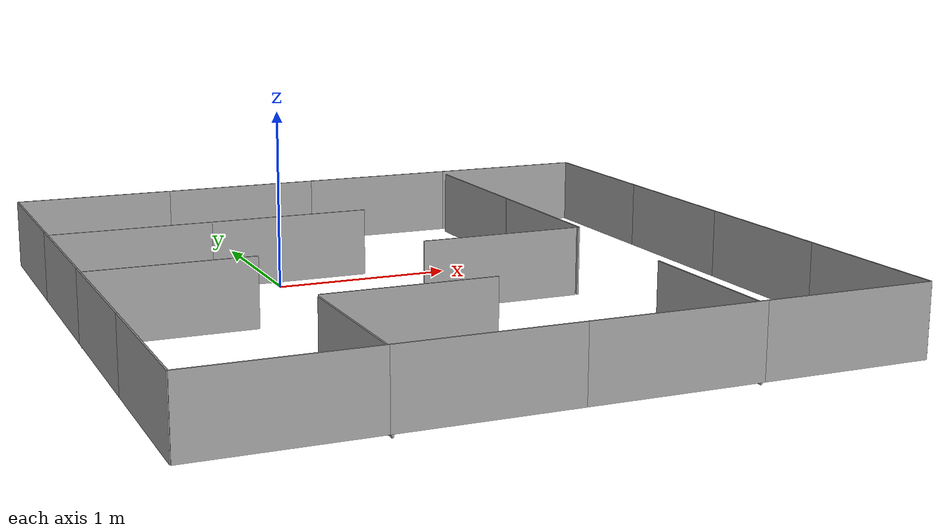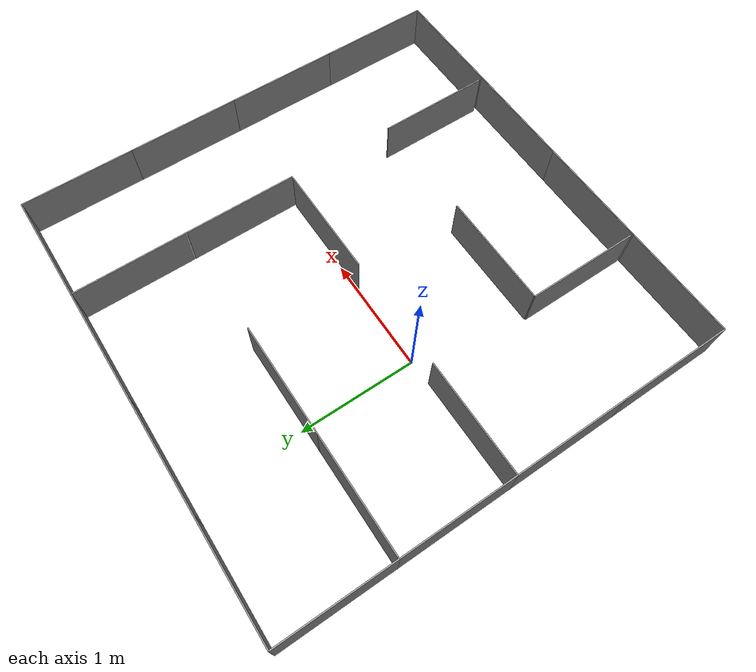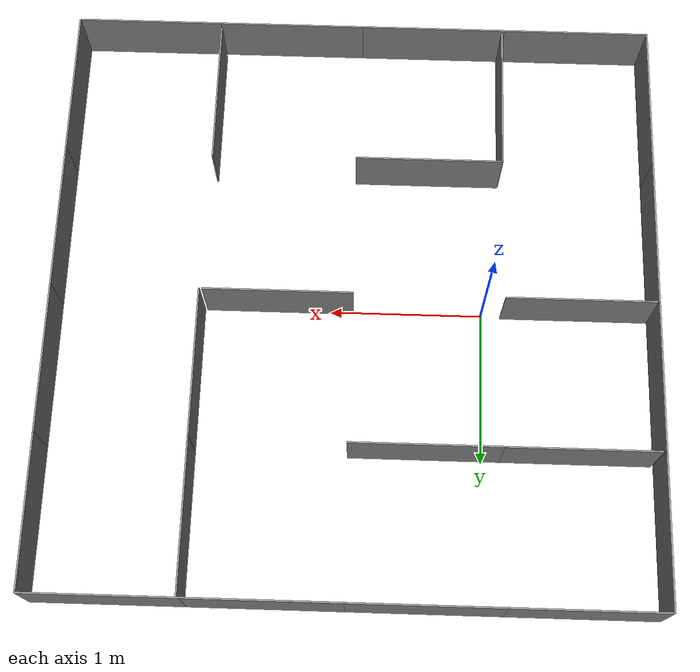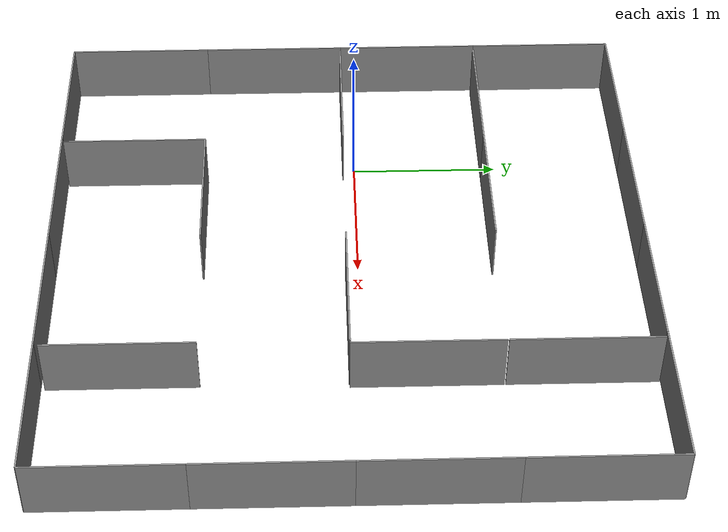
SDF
<sdf version="1.7">
 <model name="maze2">
  <model name="enclosure">
   <model name="wall_section_00">
    <link name="link">
     <inertial>
      <mass>0.2</mass>
      <inertia>
       <ixx>0.0333333</ixx>
       <ixy>0</ixy>
       <ixz>0</ixz>
       <iyy>0.0333333</iyy>
       <iyz>0</iyz>
       <izz>0.0333333</izz>
      </inertia>
     </inertial>
     <visual name="visual">
      <geometry><box><size>1 0.01 0.42</size></box></geometry>
      <material>
       <script><name>Gazebo/Grey</name><uri>file://media/materials/scripts/gazebo.material</uri></script>
       <shader type="pixel"><normal_map>__default__</normal_map></shader>
       <ambient>0.3 0.3 0.3 1</ambient>
       <diffuse>0.7 0.7 0.7 1</diffuse>
       <specular>0.01 0.01 0.01 1</specular>
       <emissive>1 1 1 1</emissive>
      </material>
     </visual>
     <collision name="collision_1">
      <geometry><box><size>1 0.01 0.42</size></box></geometry>
      <surface>
       <friction>
        <ode><mu>1</mu><mu2>1</mu2><fdir1>0 0 0</fdir1><slip1>0</slip1><slip2>0</slip2></ode>
        <torsional>
         <coefficient>1</coefficient>
         <patch_radius>0</patch_radius>
         <surface_radius>0</surface_radius>
         <use_patch_radius>1</use_patch_radius>
         <ode><slip>0</slip></ode>
        </torsional>
       </friction>
       <bounce><restitution_coefficient>0</restitution_coefficient><threshold>1e+06</threshold></bounce>
       <contact>
        <collide_without_contact>0</collide_without_contact>
        <collide_without_contact_bitmask>1</collide_without_contact_bitmask>
        <collide_bitmask>1</collide_bitmask>
        <ode>
         <soft_cfm>0</soft_cfm>
         <soft_erp>0.2</soft_erp>
         <kp>1e+13</kp>
         <kd>1</kd>
         <max_vel>0.01</max_vel>
         <min_depth>0</min_depth>
        </ode>
        <bullet>
         <split_impulse>1</split_impulse>
         <split_impulse_penetration_threshold>-0.01</split_impulse_penetration_threshold>
         <soft_cfm>0</soft_cfm>
         <soft_erp>0.2</soft_erp>
         <kp>1e+13</kp>
         <kd>1</kd>
        </bullet>
       </contact>
      </surface>
     </collision>
    </link>
    <static>0</static>
    <pose>-0.5 0 0 0 -0 0</pose>
   </model>
   <model name="wall_section_01">
    <link name="link">
     <inertial>
      <mass>0.2</mass>
      <inertia>
       <ixx>0.0333333</ixx>
       <ixy>0</ixy>
       <ixz>0</ixz>
       <iyy>0.0333333</iyy>
       <iyz>0</iyz>
       <izz>0.0333333</izz>
      </inertia>
     </inertial>
     <visual name="visual">
      <geometry><box><size>1 0.01 0.42</size></box></geometry>
      <material>
       <script><name>Gazebo/Grey</name><uri>file://media/materials/scripts/gazebo.material</uri></script>
       <shader type="pixel"><normal_map>__default__</normal_map></shader>
       <ambient>0.3 0.3 0.3 1</ambient>
       <diffuse>0.7 0.7 0.7 1</diffuse>
       <specular>0.01 0.01 0.01 1</specular>
       <emissive>1 1 1 1</emissive>
      </material>
     </visual>
     <collision name="collision_1">
      <geometry><box><size>1 0.01 0.42</size></box></geometry>
      <surface>
       <friction>
        <ode><mu>1</mu><mu2>1</mu2><fdir1>0 0 0</fdir1><slip1>0</slip1><slip2>0</slip2></ode>
        <torsional>
         <coefficient>1</coefficient>
         <patch_radius>0</patch_radius>
         <surface_radius>0</surface_radius>
         <use_patch_radius>1</use_patch_radius>
         <ode><slip>0</slip></ode>
        </torsional>
       </friction>
       <bounce><restitution_coefficient>0</restitution_coefficient><threshold>1e+06</threshold></bounce>
       <contact>
        <collide_without_contact>0</collide_without_contact>
        <collide_without_contact_bitmask>1</collide_without_contact_bitmask>
        <collide_bitmask>1</collide_bitmask>
        <ode>
         <soft_cfm>0</soft_cfm>
         <soft_erp>0.2</soft_erp>
         <kp>1e+13</kp>
         <kd>1</kd>
         <max_vel>0.01</max_vel>
         <min_depth>0</min_depth>
        </ode>
        <bullet>
         <split_impulse>1</split_impulse>
         <split_impulse_penetration_threshold>-0.01</split_impulse_penetration_threshold>
         <soft_cfm>0</soft_cfm>
         <soft_erp>0.2</soft_erp>
         <kp>1e+13</kp>
         <kd>1</kd>
        </bullet>
       </contact>
      </surface>
     </collision>
    </link>
    <static>0</static>
    <pose>0.5 0 0 0 -0 0</pose>
   </model>
   <model name="wall_section_02">
    <link name="link">
     <inertial>
      <mass>0.2</mass>
      <inertia>
       <ixx>0.0333333</ixx>
       <ixy>0</ixy>
       <ixz>0</ixz>
       <iyy>0.0333333</iyy>
       <iyz>0</iyz>
       <izz>0.0333333</izz>
      </inertia>
     </inertial>
     <visual name="visual">
      <geometry><box><size>1 0.01 0.42</size></box></geometry>
      <material>
       <script><name>Gazebo/Grey</name><uri>file://media/materials/scripts/gazebo.material</uri></script>
       <shader type="pixel"><normal_map>__default__</normal_map></shader>
       <ambient>0.3 0.3 0.3 1</ambient>
       <diffuse>0.7 0.7 0.7 1</diffuse>
       <specular>0.01 0.01 0.01 1</specular>
       <emissive>1 1 1 1</emissive>
      </material>
     </visual>
     <collision name="collision_1">
      <geometry><box><size>1 0.01 0.42</size></box></geometry>
      <surface>
       <friction>
        <ode><mu>1</mu><mu2>1</mu2><fdir1>0 0 0</fdir1><slip1>0</slip1><slip2>0</slip2></ode>
        <torsional>
         <coefficient>1</coefficient>
         <patch_radius>0</patch_radius>
         <surface_radius>0</surface_radius>
         <use_patch_radius>1</use_patch_radius>
         <ode><slip>0</slip></ode>
        </torsional>
       </friction>
       <bounce><restitution_coefficient>0</restitution_coefficient><threshold>1e+06</threshold></bounce>
       <contact>
        <collide_without_contact>0</collide_without_contact>
        <collide_without_contact_bitmask>1</collide_without_contact_bitmask>
        <collide_bitmask>1</collide_bitmask>
        <ode>
         <soft_cfm>0</soft_cfm>
         <soft_erp>0.2</soft_erp>
         <kp>1e+13</kp>
         <kd>1</kd>
         <max_vel>0.01</max_vel>
         <min_depth>0</min_depth>
        </ode>
        <bullet>
         <split_impulse>1</split_impulse>
         <split_impulse_penetration_threshold>-0.01</split_impulse_penetration_threshold>
         <soft_cfm>0</soft_cfm>
         <soft_erp>0.2</soft_erp>
         <kp>1e+13</kp>
         <kd>1</kd>
        </bullet>
       </contact>
      </surface>
     </collision>
    </link>
    <static>0</static>
    <pose>1.5 0 0 0 -0 0</pose>
   </model>
   <model name="wall_section_03">
    <link name="link">
     <inertial>
      <mass>0.2</mass>
      <inertia>
       <ixx>0.0333333</ixx>
       <ixy>0</ixy>
       <ixz>0</ixz>
       <iyy>0.0333333</iyy>
       <iyz>0</iyz>
       <izz>0.0333333</izz>
      </inertia>
     </inertial>
     <visual name="visual">
      <geometry><box><size>1 0.01 0.42</size></box></geometry>
      <material>
       <script><name>Gazebo/Grey</name><uri>file://media/materials/scripts/gazebo.material</uri></script>
       <shader type="pixel"><normal_map>__default__</normal_map></shader>
       <ambient>0.3 0.3 0.3 1</ambient>
       <diffuse>0.7 0.7 0.7 1</diffuse>
       <specular>0.01 0.01 0.01 1</specular>
       <emissive>1 1 1 1</emissive>
      </material>
     </visual>
     <collision name="collision_1">
      <geometry><box><size>1 0.01 0.42</size></box></geometry>
      <surface>
       <friction>
        <ode><mu>1</mu><mu2>1</mu2><fdir1>0 0 0</fdir1><slip1>0</slip1><slip2>0</slip2></ode>
        <torsional>
         <coefficient>1</coefficient>
         <patch_radius>0</patch_radius>
         <surface_radius>0</surface_radius>
         <use_patch_radius>1</use_patch_radius>
         <ode><slip>0</slip></ode>
        </torsional>
       </friction>
       <bounce><restitution_coefficient>0</restitution_coefficient><threshold>1e+06</threshold></bounce>
       <contact>
        <collide_without_contact>0</collide_without_contact>
        <collide_without_contact_bitmask>1</collide_without_contact_bitmask>
        <collide_bitmask>1</collide_bitmask>
        <ode>
         <soft_cfm>0</soft_cfm>
         <soft_erp>0.2</soft_erp>
         <kp>1e+13</kp>
         <kd>1</kd>
         <max_vel>0.01</max_vel>
         <min_depth>0</min_depth>
        </ode>
        <bullet>
         <split_impulse>1</split_impulse>
         <split_impulse_penetration_threshold>-0.01</split_impulse_penetration_threshold>
         <soft_cfm>0</soft_cfm>
         <soft_erp>0.2</soft_erp>
         <kp>1e+13</kp>
         <kd>1</kd>
        </bullet>
       </contact>
      </surface>
     </collision>
    </link>
    <static>0</static>
    <pose>2.5 0 0 0 -0 0</pose>
   </model>
   <model name="wall_section_04">
    <link name="link">
     <inertial>
      <mass>0.2</mass>
      <inertia>
       <ixx>0.0333333</ixx>
       <ixy>0</ixy>
       <ixz>0</ixz>
       <iyy>0.0333333</iyy>
       <iyz>0</iyz>
       <izz>0.0333333</izz>
      </inertia>
     </inertial>
     <visual name="visual">
      <geometry><box><size>1 0.01 0.42</size></box></geometry>
      <material>
       <script><name>Gazebo/Grey</name><uri>file://media/materials/scripts/gazebo.material</uri></script>
       <shader type="pixel"><normal_map>__default__</normal_map></shader>
       <ambient>0.3 0.3 0.3 1</ambient>
       <diffuse>0.7 0.7 0.7 1</diffuse>
       <specular>0.01 0.01 0.01 1</specular>
       <emissive>1 1 1 1</emissive>
      </material>
     </visual>
     <collision name="collision_1">
      <geometry><box><size>1 0.01 0.42</size></box></geometry>
      <surface>
       <friction>
        <ode><mu>1</mu><mu2>1</mu2><fdir1>0 0 0</fdir1><slip1>0</slip1><slip2>0</slip2></ode>
        <torsional>
         <coefficient>1</coefficient>
         <patch_radius>0</patch_radius>
         <surface_radius>0</surface_radius>
         <use_patch_radius>1</use_patch_radius>
         <ode><slip>0</slip></ode>
        </torsional>
       </friction>
       <bounce><restitution_coefficient>0</restitution_coefficient><threshold>1e+06</threshold></bounce>
       <contact>
        <collide_without_contact>0</collide_without_contact>
        <collide_without_contact_bitmask>1</collide_without_contact_bitmask>
        <collide_bitmask>1</collide_bitmask>
        <ode>
         <soft_cfm>0</soft_cfm>
         <soft_erp>0.2</soft_erp>
         <kp>1e+13</kp>
         <kd>1</kd>
         <max_vel>0.01</max_vel>
         <min_depth>0</min_depth>
        </ode>
        <bullet>
         <split_impulse>1</split_impulse>
         <split_impulse_penetration_threshold>-0.01</split_impulse_penetration_threshold>
         <soft_cfm>0</soft_cfm>
         <soft_erp>0.2</soft_erp>
         <kp>1e+13</kp>
         <kd>1</kd>
        </bullet>
       </contact>
      </surface>
     </collision>
    </link>
    <static>0</static>
    <pose>3 0.5 0 0 -0 1.5708</pose>
   </model>
   <model name="wall_section_05">
    <link name="link">
     <inertial>
      <mass>0.2</mass>
      <inertia>
       <ixx>0.0333333</ixx>
       <ixy>0</ixy>
       <ixz>0</ixz>
       <iyy>0.0333333</iyy>
       <iyz>0</iyz>
       <izz>0.0333333</izz>
      </inertia>
     </inertial>
     <visual name="visual">
      <geometry><box><size>1 0.01 0.42</size></box></geometry>
      <material>
       <script><name>Gazebo/Grey</name><uri>file://media/materials/scripts/gazebo.material</uri></script>
       <shader type="pixel"><normal_map>__default__</normal_map></shader>
       <ambient>0.3 0.3 0.3 1</ambient>
       <diffuse>0.7 0.7 0.7 1</diffuse>
       <specular>0.01 0.01 0.01 1</specular>
       <emissive>1 1 1 1</emissive>
      </material>
     </visual>
     <collision name="collision_1">
      <geometry><box><size>1 0.01 0.42</size></box></geometry>
      <surface>
       <friction>
        <ode><mu>1</mu><mu2>1</mu2><fdir1>0 0 0</fdir1><slip1>0</slip1><slip2>0</slip2></ode>
        <torsional>
         <coefficient>1</coefficient>
         <patch_radius>0</patch_radius>
         <surface_radius>0</surface_radius>
         <use_patch_radius>1</use_patch_radius>
         <ode><slip>0</slip></ode>
        </torsional>
       </friction>
       <bounce><restitution_coefficient>0</restitution_coefficient><threshold>1e+06</threshold></bounce>
       <contact>
        <collide_without_contact>0</collide_without_contact>
        <collide_without_contact_bitmask>1</collide_without_contact_bitmask>
        <collide_bitmask>1</collide_bitmask>
        <ode>
         <soft_cfm>0</soft_cfm>
         <soft_erp>0.2</soft_erp>
         <kp>1e+13</kp>
         <kd>1</kd>
         <max_vel>0.01</max_vel>
         <min_depth>0</min_depth>
        </ode>
        <bullet>
         <split_impulse>1</split_impulse>
         <split_impulse_penetration_threshold>-0.01</split_impulse_penetration_threshold>
         <soft_cfm>0</soft_cfm>
         <soft_erp>0.2</soft_erp>
         <kp>1e+13</kp>
         <kd>1</kd>
        </bullet>
       </contact>
      </surface>
     </collision>
    </link>
    <static>0</static>
    <pose>3 1.5 0 0 -0 1.5708</pose>
   </model>
   <model name="wall_section_06">
    <link name="link">
     <inertial>
      <mass>0.2</mass>
      <inertia>
       <ixx>0.0333333</ixx>
       <ixy>0</ixy>
       <ixz>0</ixz>
       <iyy>0.0333333</iyy>
       <iyz>0</iyz>
       <izz>0.0333333</izz>
      </inertia>
     </inertial>
     <visual name="visual">
      <geometry><box><size>1 0.01 0.42</size></box></geometry>
      <material>
       <script><name>Gazebo/Grey</name><uri>file://media/materials/scripts/gazebo.material</uri></script>
       <shader type="pixel"><normal_map>__default__</normal_map></shader>
       <ambient>0.3 0.3 0.3 1</ambient>
       <diffuse>0.7 0.7 0.7 1</diffuse>
       <specular>0.01 0.01 0.01 1</specular>
       <emissive>1 1 1 1</emissive>
      </material>
     </visual>
     <collision name="collision_1">
      <geometry><box><size>1 0.01 0.42</size></box></geometry>
      <surface>
       <friction>
        <ode><mu>1</mu><mu2>1</mu2><fdir1>0 0 0</fdir1><slip1>0</slip1><slip2>0</slip2></ode>
        <torsional>
         <coefficient>1</coefficient>
         <patch_radius>0</patch_radius>
         <surface_radius>0</surface_radius>
         <use_patch_radius>1</use_patch_radius>
         <ode><slip>0</slip></ode>
        </torsional>
       </friction>
       <bounce><restitution_coefficient>0</restitution_coefficient><threshold>1e+06</threshold></bounce>
       <contact>
        <collide_without_contact>0</collide_without_contact>
        <collide_without_contact_bitmask>1</collide_without_contact_bitmask>
        <collide_bitmask>1</collide_bitmask>
        <ode>
         <soft_cfm>0</soft_cfm>
         <soft_erp>0.2</soft_erp>
         <kp>1e+13</kp>
         <kd>1</kd>
         <max_vel>0.01</max_vel>
         <min_depth>0</min_depth>
        </ode>
        <bullet>
         <split_impulse>1</split_impulse>
         <split_impulse_penetration_threshold>-0.01</split_impulse_penetration_threshold>
         <soft_cfm>0</soft_cfm>
         <soft_erp>0.2</soft_erp>
         <kp>1e+13</kp>
         <kd>1</kd>
        </bullet>
       </contact>
      </surface>
     </collision>
    </link>
    <static>0</static>
    <pose>3 2.5 0 0 -0 1.5708</pose>
   </model>
   <model name="wall_section_07">
    <link name="link">
     <inertial>
      <mass>0.2</mass>
      <inertia>
       <ixx>0.0333333</ixx>
       <ixy>0</ixy>
       <ixz>0</ixz>
       <iyy>0.0333333</iyy>
       <iyz>0</iyz>
       <izz>0.0333333</izz>
      </inertia>
     </inertial>
     <visual name="visual">
      <geometry><box><size>1 0.01 0.42</size></box></geometry>
      <material>
       <script><name>Gazebo/Grey</name><uri>file://media/materials/scripts/gazebo.material</uri></script>
       <shader type="pixel"><normal_map>__default__</normal_map></shader>
       <ambient>0.3 0.3 0.3 1</ambient>
       <diffuse>0.7 0.7 0.7 1</diffuse>
       <specular>0.01 0.01 0.01 1</specular>
       <emissive>1 1 1 1</emissive>
      </material>
     </visual>
     <collision name="collision_1">
      <geometry><box><size>1 0.01 0.42</size></box></geometry>
      <surface>
       <friction>
        <ode><mu>1</mu><mu2>1</mu2><fdir1>0 0 0</fdir1><slip1>0</slip1><slip2>0</slip2></ode>
        <torsional>
         <coefficient>1</coefficient>
         <patch_radius>0</patch_radius>
         <surface_radius>0</surface_radius>
         <use_patch_radius>1</use_patch_radius>
         <ode><slip>0</slip></ode>
        </torsional>
       </friction>
       <bounce><restitution_coefficient>0</restitution_coefficient><threshold>1e+06</threshold></bounce>
       <contact>
        <collide_without_contact>0</collide_without_contact>
        <collide_without_contact_bitmask>1</collide_without_contact_bitmask>
        <collide_bitmask>1</collide_bitmask>
        <ode>
         <soft_cfm>0</soft_cfm>
         <soft_erp>0.2</soft_erp>
         <kp>1e+13</kp>
         <kd>1</kd>
         <max_vel>0.01</max_vel>
         <min_depth>0</min_depth>
        </ode>
        <bullet>
         <split_impulse>1</split_impulse>
         <split_impulse_penetration_threshold>-0.01</split_impulse_penetration_threshold>
         <soft_cfm>0</soft_cfm>
         <soft_erp>0.2</soft_erp>
         <kp>1e+13</kp>
         <kd>1</kd>
        </bullet>
       </contact>
      </surface>
     </collision>
    </link>
    <static>0</static>
    <pose>3 3.5 0 0 -0 1.5708</pose>
   </model>
   <model name="wall_section_08">
    <link name="link">
     <inertial>
      <mass>0.2</mass>
      <inertia>
       <ixx>0.0333333</ixx>
       <ixy>0</ixy>
       <ixz>0</ixz>
       <iyy>0.0333333</iyy>
       <iyz>0</iyz>
       <izz>0.0333333</izz>
      </inertia>
     </inertial>
     <visual name="visual">
      <geometry><box><size>1 0.01 0.42</size></box></geometry>
      <material>
       <script><name>Gazebo/Grey</name><uri>file://media/materials/scripts/gazebo.material</uri></script>
       <shader type="pixel"><normal_map>__default__</normal_map></shader>
       <ambient>0.3 0.3 0.3 1</ambient>
       <diffuse>0.7 0.7 0.7 1</diffuse>
       <specular>0.01 0.01 0.01 1</specular>
       <emissive>1 1 1 1</emissive>
      </material>
     </visual>
     <collision name="collision_1">
      <geometry><box><size>1 0.01 0.42</size></box></geometry>
      <surface>
       <friction>
        <ode><mu>1</mu><mu2>1</mu2><fdir1>0 0 0</fdir1><slip1>0</slip1><slip2>0</slip2></ode>
        <torsional>
         <coefficient>1</coefficient>
         <patch_radius>0</patch_radius>
         <surface_radius>0</surface_radius>
         <use_patch_radius>1</use_patch_radius>
         <ode><slip>0</slip></ode>
        </torsional>
       </friction>
       <bounce><restitution_coefficient>0</restitution_coefficient><threshold>1e+06</threshold></bounce>
       <contact>
        <collide_without_contact>0</collide_without_contact>
        <collide_without_contact_bitmask>1</collide_without_contact_bitmask>
        <collide_bitmask>1</collide_bitmask>
        <ode>
         <soft_cfm>0</soft_cfm>
         <soft_erp>0.2</soft_erp>
         <kp>1e+13</kp>
         <kd>1</kd>
         <max_vel>0.01</max_vel>
         <min_depth>0</min_depth>
        </ode>
        <bullet>
         <split_impulse>1</split_impulse>
         <split_impulse_penetration_threshold>-0.01</split_impulse_penetration_threshold>
         <soft_cfm>0</soft_cfm>
         <soft_erp>0.2</soft_erp>
         <kp>1e+13</kp>
         <kd>1</kd>
        </bullet>
       </contact>
      </surface>
     </collision>
    </link>
    <static>0</static>
    <pose>2.5 4 0 0 -0 3.14159</pose>
   </model>
   <model name="wall_section_09">
    <link name="link">
     <inertial>
      <mass>0.2</mass>
      <inertia>
       <ixx>0.0333333</ixx>
       <ixy>0</ixy>
       <ixz>0</ixz>
       <iyy>0.0333333</iyy>
       <iyz>0</iyz>
       <izz>0.0333333</izz>
      </inertia>
     </inertial>
     <visual name="visual">
      <geometry><box><size>1 0.01 0.42</size></box></geometry>
      <material>
       <script><name>Gazebo/Grey</name><uri>file://media/materials/scripts/gazebo.material</uri></script>
       <shader type="pixel"><normal_map>__default__</normal_map></shader>
       <ambient>0.3 0.3 0.3 1</ambient>
       <diffuse>0.7 0.7 0.7 1</diffuse>
       <specular>0.01 0.01 0.01 1</specular>
       <emissive>1 1 1 1</emissive>
      </material>
     </visual>
     <collision name="collision_1">
      <geometry><box><size>1 0.01 0.42</size></box></geometry>
      <surface>
       <friction>
        <ode><mu>1</mu><mu2>1</mu2><fdir1>0 0 0</fdir1><slip1>0</slip1><slip2>0</slip2></ode>
        <torsional>
         <coefficient>1</coefficient>
         <patch_radius>0</patch_radius>
         <surface_radius>0</surface_radius>
         <use_patch_radius>1</use_patch_radius>
         <ode><slip>0</slip></ode>
        </torsional>
       </friction>
       <bounce><restitution_coefficient>0</restitution_coefficient><threshold>1e+06</threshold></bounce>
       <contact>
        <collide_without_contact>0</collide_without_contact>
        <collide_without_contact_bitmask>1</collide_without_contact_bitmask>
        <collide_bitmask>1</collide_bitmask>
        <ode>
         <soft_cfm>0</soft_cfm>
         <soft_erp>0.2</soft_erp>
         <kp>1e+13</kp>
         <kd>1</kd>
         <max_vel>0.01</max_vel>
         <min_depth>0</min_depth>
        </ode>
        <bullet>
         <split_impulse>1</split_impulse>
         <split_impulse_penetration_threshold>-0.01</split_impulse_penetration_threshold>
         <soft_cfm>0</soft_cfm>
         <soft_erp>0.2</soft_erp>
         <kp>1e+13</kp>
         <kd>1</kd>
        </bullet>
       </contact>
      </surface>
     </collision>
    </link>
    <static>0</static>
    <pose>1.5 4 0 0 -0 3.14159</pose>
   </model>
   <model name="wall_section_10">
    <link name="link">
     <inertial>
      <mass>0.2</mass>
      <inertia>
       <ixx>0.0333333</ixx>
       <ixy>0</ixy>
       <ixz>0</ixz>
       <iyy>0.0333333</iyy>
       <iyz>0</iyz>
       <izz>0.0333333</izz>
      </inertia>
     </inertial>
     <visual name="visual">
      <geometry><box><size>1 0.01 0.42</size></box></geometry>
      <material>
       <script><name>Gazebo/Grey</name><uri>file://media/materials/scripts/gazebo.material</uri></script>
       <shader type="pixel"><normal_map>__default__</normal_map></shader>
       <ambient>0.3 0.3 0.3 1</ambient>
       <diffuse>0.7 0.7 0.7 1</diffuse>
       <specular>0.01 0.01 0.01 1</specular>
       <emissive>1 1 1 1</emissive>
      </material>
     </visual>
     <collision name="collision_1">
      <geometry><box><size>1 0.01 0.42</size></box></geometry>
      <surface>
       <friction>
        <ode><mu>1</mu><mu2>1</mu2><fdir1>0 0 0</fdir1><slip1>0</slip1><slip2>0</slip2></ode>
        <torsional>
         <coefficient>1</coefficient>
         <patch_radius>0</patch_radius>
         <surface_radius>0</surface_radius>
         <use_patch_radius>1</use_patch_radius>
         <ode><slip>0</slip></ode>
        </torsional>
       </friction>
       <bounce><restitution_coefficient>0</restitution_coefficient><threshold>1e+06</threshold></bounce>
       <contact>
        <collide_without_contact>0</collide_without_contact>
        <collide_without_contact_bitmask>1</collide_without_contact_bitmask>
        <collide_bitmask>1</collide_bitmask>
        <ode>
         <soft_cfm>0</soft_cfm>
         <soft_erp>0.2</soft_erp>
         <kp>1e+13</kp>
         <kd>1</kd>
         <max_vel>0.01</max_vel>
         <min_depth>0</min_depth>
        </ode>
        <bullet>
         <split_impulse>1</split_impulse>
         <split_impulse_penetration_threshold>-0.01</split_impulse_penetration_threshold>
         <soft_cfm>0</soft_cfm>
         <soft_erp>0.2</soft_erp>
         <kp>1e+13</kp>
         <kd>1</kd>
        </bullet>
       </contact>
      </surface>
     </collision>
    </link>
    <static>0</static>
    <pose>0.5 4 0 0 -0 3.14159</pose>
   </model>
   <model name="wall_section_11">
    <link name="link">
     <inertial>
      <mass>0.2</mass>
      <inertia>
       <ixx>0.0333333</ixx>
       <ixy>0</ixy>
       <ixz>0</ixz>
       <iyy>0.0333333</iyy>
       <iyz>0</iyz>
       <izz>0.0333333</izz>
      </inertia>
     </inertial>
     <visual name="visual">
      <geometry><box><size>1 0.01 0.42</size></box></geometry>
      <material>
       <script><name>Gazebo/Grey</name><uri>file://media/materials/scripts/gazebo.material</uri></script>
       <shader type="pixel"><normal_map>__default__</normal_map></shader>
       <ambient>0.3 0.3 0.3 1</ambient>
       <diffuse>0.7 0.7 0.7 1</diffuse>
       <specular>0.01 0.01 0.01 1</specular>
       <emissive>1 1 1 1</emissive>
      </material>
     </visual>
     <collision name="collision_1">
      <geometry><box><size>1 0.01 0.42</size></box></geometry>
      <surface>
       <friction>
        <ode><mu>1</mu><mu2>1</mu2><fdir1>0 0 0</fdir1><slip1>0</slip1><slip2>0</slip2></ode>
        <torsional>
         <coefficient>1</coefficient>
         <patch_radius>0</patch_radius>
         <surface_radius>0</surface_radius>
         <use_patch_radius>1</use_patch_radius>
         <ode><slip>0</slip></ode>
        </torsional>
       </friction>
       <bounce><restitution_coefficient>0</restitution_coefficient><threshold>1e+06</threshold></bounce>
       <contact>
        <collide_without_contact>0</collide_without_contact>
        <collide_without_contact_bitmask>1</collide_without_contact_bitmask>
        <collide_bitmask>1</collide_bitmask>
        <ode>
         <soft_cfm>0</soft_cfm>
         <soft_erp>0.2</soft_erp>
         <kp>1e+13</kp>
         <kd>1</kd>
         <max_vel>0.01</max_vel>
         <min_depth>0</min_depth>
        </ode>
        <bullet>
         <split_impulse>1</split_impulse>
         <split_impulse_penetration_threshold>-0.01</split_impulse_penetration_threshold>
         <soft_cfm>0</soft_cfm>
         <soft_erp>0.2</soft_erp>
         <kp>1e+13</kp>
         <kd>1</kd>
        </bullet>
       </contact>
      </surface>
     </collision>
    </link>
    <static>0</static>
    <pose>-0.5 4 0 0 -0 3.14159</pose>
   </model>
   <model name="wall_section_12">
    <link name="link">
     <inertial>
      <mass>0.2</mass>
      <inertia>
       <ixx>0.0333333</ixx>
       <ixy>0</ixy>
       <ixz>0</ixz>
       <iyy>0.0333333</iyy>
       <iyz>0</iyz>
       <izz>0.0333333</izz>
      </inertia>
     </inertial>
     <visual name="visual">
      <geometry><box><size>1 0.01 0.42</size></box></geometry>
      <material>
       <script><name>Gazebo/Grey</name><uri>file://media/materials/scripts/gazebo.material</uri></script>
       <shader type="pixel"><normal_map>__default__</normal_map></shader>
       <ambient>0.3 0.3 0.3 1</ambient>
       <diffuse>0.7 0.7 0.7 1</diffuse>
       <specular>0.01 0.01 0.01 1</specular>
       <emissive>1 1 1 1</emissive>
      </material>
     </visual>
     <collision name="collision_1">
      <geometry><box><size>1 0.01 0.42</size></box></geometry>
      <surface>
       <friction>
        <ode><mu>1</mu><mu2>1</mu2><fdir1>0 0 0</fdir1><slip1>0</slip1><slip2>0</slip2></ode>
        <torsional>
         <coefficient>1</coefficient>
         <patch_radius>0</patch_radius>
         <surface_radius>0</surface_radius>
         <use_patch_radius>1</use_patch_radius>
         <ode><slip>0</slip></ode>
        </torsional>
       </friction>
       <bounce><restitution_coefficient>0</restitution_coefficient><threshold>1e+06</threshold></bounce>
       <contact>
        <collide_without_contact>0</collide_without_contact>
        <collide_without_contact_bitmask>1</collide_without_contact_bitmask>
        <collide_bitmask>1</collide_bitmask>
        <ode>
         <soft_cfm>0</soft_cfm>
         <soft_erp>0.2</soft_erp>
         <kp>1e+13</kp>
         <kd>1</kd>
         <max_vel>0.01</max_vel>
         <min_depth>0</min_depth>
        </ode>
        <bullet>
         <split_impulse>1</split_impulse>
         <split_impulse_penetration_threshold>-0.01</split_impulse_penetration_threshold>
         <soft_cfm>0</soft_cfm>
         <soft_erp>0.2</soft_erp>
         <kp>1e+13</kp>
         <kd>1</kd>
        </bullet>
       </contact>
      </surface>
     </collision>
    </link>
    <static>0</static>
    <pose>-1 3.5 0 0 0 -1.5708</pose>
   </model>
   <model name="wall_section_13">
    <link name="link">
     <inertial>
      <mass>0.2</mass>
      <inertia>
       <ixx>0.0333333</ixx>
       <ixy>0</ixy>
       <ixz>0</ixz>
       <iyy>0.0333333</iyy>
       <iyz>0</iyz>
       <izz>0.0333333</izz>
      </inertia>
     </inertial>
     <visual name="visual">
      <geometry><box><size>1 0.01 0.42</size></box></geometry>
      <material>
       <script><name>Gazebo/Grey</name><uri>file://media/materials/scripts/gazebo.material</uri></script>
       <shader type="pixel"><normal_map>__default__</normal_map></shader>
       <ambient>0.3 0.3 0.3 1</ambient>
       <diffuse>0.7 0.7 0.7 1</diffuse>
       <specular>0.01 0.01 0.01 1</specular>
       <emissive>1 1 1 1</emissive>
      </material>
     </visual>
     <collision name="collision_1">
      <geometry><box><size>1 0.01 0.42</size></box></geometry>
      <surface>
       <friction>
        <ode><mu>1</mu><mu2>1</mu2><fdir1>0 0 0</fdir1><slip1>0</slip1><slip2>0</slip2></ode>
        <torsional>
         <coefficient>1</coefficient>
         <patch_radius>0</patch_radius>
         <surface_radius>0</surface_radius>
         <use_patch_radius>1</use_patch_radius>
         <ode><slip>0</slip></ode>
        </torsional>
       </friction>
       <bounce><restitution_coefficient>0</restitution_coefficient><threshold>1e+06</threshold></bounce>
       <contact>
        <collide_without_contact>0</collide_without_contact>
        <collide_without_contact_bitmask>1</collide_without_contact_bitmask>
        <collide_bitmask>1</collide_bitmask>
        <ode>
         <soft_cfm>0</soft_cfm>
         <soft_erp>0.2</soft_erp>
         <kp>1e+13</kp>
         <kd>1</kd>
         <max_vel>0.01</max_vel>
         <min_depth>0</min_depth>
        </ode>
        <bullet>
         <split_impulse>1</split_impulse>
         <split_impulse_penetration_threshold>-0.01</split_impulse_penetration_threshold>
         <soft_cfm>0</soft_cfm>
         <soft_erp>0.2</soft_erp>
         <kp>1e+13</kp>
         <kd>1</kd>
        </bullet>
       </contact>
      </surface>
     </collision>
    </link>
    <static>0</static>
    <pose>-1 2.5 0 0 0 -1.5708</pose>
   </model>
   <model name="wall_section_14">
    <link name="link">
     <inertial>
      <mass>0.2</mass>
      <inertia>
       <ixx>0.0333333</ixx>
       <ixy>0</ixy>
       <ixz>0</ixz>
       <iyy>0.0333333</iyy>
       <iyz>0</iyz>
       <izz>0.0333333</izz>
      </inertia>
     </inertial>
     <visual name="visual">
      <geometry><box><size>1 0.01 0.42</size></box></geometry>
      <material>
       <script><name>Gazebo/Grey</name><uri>file://media/materials/scripts/gazebo.material</uri></script>
       <shader type="pixel"><normal_map>__default__</normal_map></shader>
       <ambient>0.3 0.3 0.3 1</ambient>
       <diffuse>0.7 0.7 0.7 1</diffuse>
       <specular>0.01 0.01 0.01 1</specular>
       <emissive>1 1 1 1</emissive>
      </material>
     </visual>
     <collision name="collision_1">
      <geometry><box><size>1 0.01 0.42</size></box></geometry>
      <surface>
       <friction>
        <ode><mu>1</mu><mu2>1</mu2><fdir1>0 0 0</fdir1><slip1>0</slip1><slip2>0</slip2></ode>
        <torsional>
         <coefficient>1</coefficient>
         <patch_radius>0</patch_radius>
         <surface_radius>0</surface_radius>
         <use_patch_radius>1</use_patch_radius>
         <ode><slip>0</slip></ode>
        </torsional>
       </friction>
       <bounce><restitution_coefficient>0</restitution_coefficient><threshold>1e+06</threshold></bounce>
       <contact>
        <collide_without_contact>0</collide_without_contact>
        <collide_without_contact_bitmask>1</collide_without_contact_bitmask>
        <collide_bitmask>1</collide_bitmask>
        <ode>
         <soft_cfm>0</soft_cfm>
         <soft_erp>0.2</soft_erp>
         <kp>1e+13</kp>
         <kd>1</kd>
         <max_vel>0.01</max_vel>
         <min_depth>0</min_depth>
        </ode>
        <bullet>
         <split_impulse>1</split_impulse>
         <split_impulse_penetration_threshold>-0.01</split_impulse_penetration_threshold>
         <soft_cfm>0</soft_cfm>
         <soft_erp>0.2</soft_erp>
         <kp>1e+13</kp>
         <kd>1</kd>
        </bullet>
       </contact>
      </surface>
     </collision>
    </link>
    <static>0</static>
    <pose>-1 1.5 0 0 0 -1.57079</pose>
   </model>
   <model name="wall_section_15">
    <link name="link">
     <inertial>
      <mass>0.2</mass>
      <inertia>
       <ixx>0.0333333</ixx>
       <ixy>0</ixy>
       <ixz>0</ixz>
       <iyy>0.0333333</iyy>
       <iyz>0</iyz>
       <izz>0.0333333</izz>
      </inertia>
     </inertial>
     <visual name="visual">
      <geometry><box><size>1 0.01 0.42</size></box></geometry>
      <material>
       <script><name>Gazebo/Grey</name><uri>file://media/materials/scripts/gazebo.material</uri></script>
       <shader type="pixel"><normal_map>__default__</normal_map></shader>
       <ambient>0.3 0.3 0.3 1</ambient>
       <diffuse>0.7 0.7 0.7 1</diffuse>
       <specular>0.01 0.01 0.01 1</specular>
       <emissive>1 1 1 1</emissive>
      </material>
     </visual>
     <collision name="collision_1">
      <geometry><box><size>1 0.01 0.42</size></box></geometry>
      <surface>
       <friction>
        <ode><mu>1</mu><mu2>1</mu2><fdir1>0 0 0</fdir1><slip1>0</slip1><slip2>0</slip2></ode>
        <torsional>
         <coefficient>1</coefficient>
         <patch_radius>0</patch_radius>
         <surface_radius>0</surface_radius>
         <use_patch_radius>1</use_patch_radius>
         <ode><slip>0</slip></ode>
        </torsional>
       </friction>
       <bounce><restitution_coefficient>0</restitution_coefficient><threshold>1e+06</threshold></bounce>
       <contact>
        <collide_without_contact>0</collide_without_contact>
        <collide_without_contact_bitmask>1</collide_without_contact_bitmask>
        <collide_bitmask>1</collide_bitmask>
        <ode>
         <soft_cfm>0</soft_cfm>
         <soft_erp>0.2</soft_erp>
         <kp>1e+13</kp>
         <kd>1</kd>
         <max_vel>0.01</max_vel>
         <min_depth>0</min_depth>
        </ode>
        <bullet>
         <split_impulse>1</split_impulse>
         <split_impulse_penetration_threshold>-0.01</split_impulse_penetration_threshold>
         <soft_cfm>0</soft_cfm>
         <soft_erp>0.2</soft_erp>
         <kp>1e+13</kp>
         <kd>1</kd>
        </bullet>
       </contact>
      </surface>
     </collision>
    </link>
    <static>0</static>
    <pose>-1 0.5 0 0 0 -1.5708</pose>
   </model>
   <static>0</static>
   <pose>-0.153677 -2.06617 0.021892 0 0 0</pose>
  </model>
  <model name="wall_section">
   <link name="link">
    <inertial>
     <mass>0.2</mass>
     <inertia>
      <ixx>0.0333333</ixx>
      <ixy>0</ixy>
      <ixz>0</ixz>
      <iyy>0.0333333</iyy>
      <iyz>0</iyz>
      <izz>0.0333333</izz>
     </inertia>
    </inertial>
    <visual name="visual">
     <geometry><box><size>1 0.01 0.42</size></box></geometry>
     <material>
      <script><name>Gazebo/Grey</name><uri>file://media/materials/scripts/gazebo.material</uri></script>
      <shader type="pixel"><normal_map>__default__</normal_map></shader>
      <ambient>0.3 0.3 0.3 1</ambient>
      <diffuse>0.7 0.7 0.7 1</diffuse>
      <specular>0.01 0.01 0.01 1</specular>
      <emissive>1 1 1 1</emissive>
     </material>
    </visual>
    <collision name="collision_1">
     <geometry><box><size>1 0.01 0.42</size></box></geometry>
     <surface>
      <friction>
       <ode><mu>1</mu><mu2>1</mu2><fdir1>0 0 0</fdir1><slip1>0</slip1><slip2>0</slip2></ode>
       <torsional>
        <coefficient>1</coefficient>
        <patch_radius>0</patch_radius>
        <surface_radius>0</surface_radius>
        <use_patch_radius>1</use_patch_radius>
        <ode><slip>0</slip></ode>
       </torsional>
      </friction>
      <bounce><restitution_coefficient>0</restitution_coefficient><threshold>1e+06</threshold></bounce>
      <contact>
       <collide_without_contact>0</collide_without_contact>
       <collide_without_contact_bitmask>1</collide_without_contact_bitmask>
       <collide_bitmask>1</collide_bitmask>
       <ode>
        <soft_cfm>0</soft_cfm>
        <soft_erp>0.2</soft_erp>
        <kp>1e+13</kp>
        <kd>1</kd>
        <max_vel>0.01</max_vel>
        <min_depth>0</min_depth>
       </ode>
       <bullet>
        <split_impulse>1</split_impulse>
        <split_impulse_penetration_threshold>-0.01</split_impulse_penetration_threshold>
        <soft_cfm>0</soft_cfm>
        <soft_erp>0.2</soft_erp>
        <kp>1e+13</kp>
        <kd>1</kd>
       </bullet>
      </contact>
     </surface>
    </collision>
   </link>
   <static>0</static>
   <pose>-0.638144 0.932565 1e-05 0 0 0</pose>
  </model>
  <model name="wall_section_0">
   <link name="link">
    <inertial>
     <mass>0.2</mass>
     <inertia>
      <ixx>0.0333333</ixx>
      <ixy>0</ixy>
      <ixz>0</ixz>
      <iyy>0.0333333</iyy>
      <iyz>0</iyz>
      <izz>0.0333333</izz>
     </inertia>
    </inertial>
    <visual name="visual">
     <geometry><box><size>1 0.01 0.42</size></box></geometry>
     <material>
      <script><name>Gazebo/Grey</name><uri>file://media/materials/scripts/gazebo.material</uri></script>
      <shader type="pixel"><normal_map>__default__</normal_map></shader>
      <ambient>0.3 0.3 0.3 1</ambient>
      <diffuse>0.7 0.7 0.7 1</diffuse>
      <specular>0.01 0.01 0.01 1</specular>
      <emissive>1 1 1 1</emissive>
     </material>
    </visual>
    <collision name="collision_1">
     <geometry><box><size>1 0.01 0.42</size></box></geometry>
     <surface>
      <friction>
       <ode><mu>1</mu><mu2>1</mu2><fdir1>0 0 0</fdir1><slip1>0</slip1><slip2>0</slip2></ode>
       <torsional>
        <coefficient>1</coefficient>
        <patch_radius>0</patch_radius>
        <surface_radius>0</surface_radius>
        <use_patch_radius>1</use_patch_radius>
        <ode><slip>0</slip></ode>
       </torsional>
      </friction>
      <bounce><restitution_coefficient>0</restitution_coefficient><threshold>1e+06</threshold></bounce>
      <contact>
       <collide_without_contact>0</collide_without_contact>
       <collide_without_contact_bitmask>1</collide_without_contact_bitmask>
       <collide_bitmask>1</collide_bitmask>
       <ode>
        <soft_cfm>0</soft_cfm>
        <soft_erp>0.2</soft_erp>
        <kp>1e+13</kp>
        <kd>1</kd>
        <max_vel>0.01</max_vel>
        <min_depth>0</min_depth>
       </ode>
       <bullet>
        <split_impulse>1</split_impulse>
        <split_impulse_penetration_threshold>-0.01</split_impulse_penetration_threshold>
        <soft_cfm>0</soft_cfm>
        <soft_erp>0.2</soft_erp>
        <kp>1e+13</kp>
        <kd>1</kd>
       </bullet>
      </contact>
     </surface>
    </collision>
   </link>
   <static>0</static>
   <pose>0.361885 0.932594 1.2e-05 0 0 0</pose>
  </model>
  <model name="wall_section_1">
   <link name="link">
    <inertial>
     <mass>0.2</mass>
     <inertia>
      <ixx>0.0333333</ixx>
      <ixy>0</ixy>
      <ixz>0</ixz>
      <iyy>0.0333333</iyy>
      <iyz>0</iyz>
      <izz>0.0333333</izz>
     </inertia>
    </inertial>
    <visual name="visual">
     <geometry><box><size>1 0.01 0.42</size></box></geometry>
     <material>
      <script><name>Gazebo/Grey</name><uri>file://media/materials/scripts/gazebo.material</uri></script>
      <shader type="pixel"><normal_map>__default__</normal_map></shader>
      <ambient>0.3 0.3 0.3 1</ambient>
      <diffuse>0.7 0.7 0.7 1</diffuse>
      <specular>0.01 0.01 0.01 1</specular>
      <emissive>1 1 1 1</emissive>
     </material>
    </visual>
    <collision name="collision_1">
     <geometry><box><size>1 0.01 0.42</size></box></geometry>
     <surface>
      <friction>
       <ode><mu>1</mu><mu2>1</mu2><fdir1>0 0 0</fdir1><slip1>0</slip1><slip2>0</slip2></ode>
       <torsional>
        <coefficient>1</coefficient>
        <patch_radius>0</patch_radius>
        <surface_radius>0</surface_radius>
        <use_patch_radius>1</use_patch_radius>
        <ode><slip>0</slip></ode>
       </torsional>
      </friction>
      <bounce><restitution_coefficient>0</restitution_coefficient><threshold>1e+06</threshold></bounce>
      <contact>
       <collide_without_contact>0</collide_without_contact>
       <collide_without_contact_bitmask>1</collide_without_contact_bitmask>
       <collide_bitmask>1</collide_bitmask>
       <ode>
        <soft_cfm>0</soft_cfm>
        <soft_erp>0.2</soft_erp>
        <kp>1e+13</kp>
        <kd>1</kd>
        <max_vel>0.01</max_vel>
        <min_depth>0</min_depth>
       </ode>
       <bullet>
        <split_impulse>1</split_impulse>
        <split_impulse_penetration_threshold>-0.01</split_impulse_penetration_threshold>
        <soft_cfm>0</soft_cfm>
        <soft_erp>0.2</soft_erp>
        <kp>1e+13</kp>
        <kd>1</kd>
       </bullet>
      </contact>
     </surface>
    </collision>
   </link>
   <static>0</static>
   <pose>0.365577 -1.05256 0.008183 0 0 0</pose>
  </model>
  <model name="wall_section_2">
   <link name="link">
    <inertial>
     <mass>0.2</mass>
     <inertia>
      <ixx>0.0333333</ixx>
      <ixy>0</ixy>
      <ixz>0</ixz>
      <iyy>0.0333333</iyy>
      <iyz>0</iyz>
      <izz>0.0333333</izz>
     </inertia>
    </inertial>
    <visual name="visual">
     <geometry><box><size>1 0.01 0.42</size></box></geometry>
     <material>
      <script><name>Gazebo/Grey</name><uri>file://media/materials/scripts/gazebo.material</uri></script>
      <shader type="pixel"><normal_map>__default__</normal_map></shader>
      <ambient>0.3 0.3 0.3 1</ambient>
      <diffuse>0.7 0.7 0.7 1</diffuse>
      <specular>0.01 0.01 0.01 1</specular>
      <emissive>1 1 1 1</emissive>
     </material>
    </visual>
    <collision name="collision_1">
     <geometry><box><size>1 0.01 0.42</size></box></geometry>
     <surface>
      <friction>
       <ode><mu>1</mu><mu2>1</mu2><fdir1>0 0 0</fdir1><slip1>0</slip1><slip2>0</slip2></ode>
       <torsional>
        <coefficient>1</coefficient>
        <patch_radius>0</patch_radius>
        <surface_radius>0</surface_radius>
        <use_patch_radius>1</use_patch_radius>
        <ode><slip>0</slip></ode>
       </torsional>
      </friction>
      <bounce><restitution_coefficient>0</restitution_coefficient><threshold>1e+06</threshold></bounce>
      <contact>
       <collide_without_contact>0</collide_without_contact>
       <collide_without_contact_bitmask>1</collide_without_contact_bitmask>
       <collide_bitmask>1</collide_bitmask>
       <ode>
        <soft_cfm>0</soft_cfm>
        <soft_erp>0.2</soft_erp>
        <kp>1e+13</kp>
        <kd>1</kd>
        <max_vel>0.01</max_vel>
        <min_depth>0</min_depth>
       </ode>
       <bullet>
        <split_impulse>1</split_impulse>
        <split_impulse_penetration_threshold>-0.01</split_impulse_penetration_threshold>
        <soft_cfm>0</soft_cfm>
        <soft_erp>0.2</soft_erp>
        <kp>1e+13</kp>
        <kd>1</kd>
       </bullet>
      </contact>
     </surface>
    </collision>
   </link>
   <static>0</static>
   <pose>1.35206 -0.075234 -1e-05 0 0 0</pose>
  </model>
  <model name="wall_section_3">
   <link name="link">
    <inertial>
     <mass>0.2</mass>
     <inertia>
      <ixx>0.0333333</ixx>
      <ixy>0</ixy>
      <ixz>0</ixz>
      <iyy>0.0333333</iyy>
      <iyz>0</iyz>
      <izz>0.0333333</izz>
     </inertia>
    </inertial>
    <visual name="visual">
     <geometry><box><size>1 0.01 0.42</size></box></geometry>
     <material>
      <script><name>Gazebo/Grey</name><uri>file://media/materials/scripts/gazebo.material</uri></script>
      <shader type="pixel"><normal_map>__default__</normal_map></shader>
      <ambient>0.3 0.3 0.3 1</ambient>
      <diffuse>0.7 0.7 0.7 1</diffuse>
      <specular>0.01 0.01 0.01 1</specular>
      <emissive>1 1 1 1</emissive>
     </material>
    </visual>
    <collision name="collision_1">
     <geometry><box><size>1 0.01 0.42</size></box></geometry>
     <surface>
      <friction>
       <ode><mu>1</mu><mu2>1</mu2><fdir1>0 0 0</fdir1><slip1>0</slip1><slip2>0</slip2></ode>
       <torsional>
        <coefficient>1</coefficient>
        <patch_radius>0</patch_radius>
        <surface_radius>0</surface_radius>
        <use_patch_radius>1</use_patch_radius>
        <ode><slip>0</slip></ode>
       </torsional>
      </friction>
      <bounce><restitution_coefficient>0</restitution_coefficient><threshold>1e+06</threshold></bounce>
      <contact>
       <collide_without_contact>0</collide_without_contact>
       <collide_without_contact_bitmask>1</collide_without_contact_bitmask>
       <collide_bitmask>1</collide_bitmask>
       <ode>
        <soft_cfm>0</soft_cfm>
        <soft_erp>0.2</soft_erp>
        <kp>1e+13</kp>
        <kd>1</kd>
        <max_vel>0.01</max_vel>
        <min_depth>0</min_depth>
       </ode>
       <bullet>
        <split_impulse>1</split_impulse>
        <split_impulse_penetration_threshold>-0.01</split_impulse_penetration_threshold>
        <soft_cfm>0</soft_cfm>
        <soft_erp>0.2</soft_erp>
        <kp>1e+13</kp>
        <kd>1</kd>
       </bullet>
      </contact>
     </surface>
    </collision>
   </link>
   <static>0</static>
   <pose>1.8704 1.43092 -5e-06 0 0 -1.5708</pose>
  </model>
  <model name="wall_section_3_clone">
   <link name="link">
    <inertial>
     <mass>0.2</mass>
     <inertia>
      <ixx>0.0333333</ixx>
      <ixy>0</ixy>
      <ixz>0</ixz>
      <iyy>0.0333333</iyy>
      <iyz>0</iyz>
      <izz>0.0333333</izz>
     </inertia>
    </inertial>
    <visual name="visual">
     <geometry><box><size>1 0.01 0.42</size></box></geometry>
     <material>
      <script><name>Gazebo/Grey</name><uri>file://media/materials/scripts/gazebo.material</uri></script>
      <shader type="pixel"><normal_map>__default__</normal_map></shader>
      <ambient>0.3 0.3 0.3 1</ambient>
      <diffuse>0.7 0.7 0.7 1</diffuse>
      <specular>0.01 0.01 0.01 1</specular>
      <emissive>1 1 1 1</emissive>
     </material>
    </visual>
    <collision name="collision_1">
     <geometry><box><size>1 0.01 0.42</size></box></geometry>
     <surface>
      <friction>
       <ode><mu>1</mu><mu2>1</mu2><fdir1>0 0 0</fdir1><slip1>0</slip1><slip2>0</slip2></ode>
       <torsional>
        <coefficient>1</coefficient>
        <patch_radius>0</patch_radius>
        <surface_radius>0</surface_radius>
        <use_patch_radius>1</use_patch_radius>
        <ode><slip>0</slip></ode>
       </torsional>
      </friction>
      <bounce><restitution_coefficient>0</restitution_coefficient><threshold>1e+06</threshold></bounce>
      <contact>
       <collide_without_contact>0</collide_without_contact>
       <collide_without_contact_bitmask>1</collide_without_contact_bitmask>
       <collide_bitmask>1</collide_bitmask>
       <ode>
        <soft_cfm>0</soft_cfm>
        <soft_erp>0.2</soft_erp>
        <kp>1e+13</kp>
        <kd>1</kd>
        <max_vel>0.01</max_vel>
        <min_depth>0</min_depth>
       </ode>
       <bullet>
        <split_impulse>1</split_impulse>
        <split_impulse_penetration_threshold>-0.01</split_impulse_penetration_threshold>
        <soft_cfm>0</soft_cfm>
        <soft_erp>0.2</soft_erp>
        <kp>1e+13</kp>
        <kd>1</kd>
       </bullet>
      </contact>
     </surface>
    </collision>
   </link>
   <static>0</static>
   <pose>1.87045 0.423238 -6e-06 0 0 -1.5708</pose>
  </model>
  <model name="wall_section_3_clone_0">
   <link name="link">
    <inertial>
     <mass>0.2</mass>
     <inertia>
      <ixx>0.0333333</ixx>
      <ixy>0</ixy>
      <ixz>0</ixz>
      <iyy>0.0333333</iyy>
      <iyz>0</iyz>
      <izz>0.0333333</izz>
     </inertia>
    </inertial>
    <visual name="visual">
     <geometry><box><size>1 0.01 0.42</size></box></geometry>
     <material>
      <script><name>Gazebo/Grey</name><uri>file://media/materials/scripts/gazebo.material</uri></script>
      <shader type="pixel"><normal_map>__default__</normal_map></shader>
      <ambient>0.3 0.3 0.3 1</ambient>
      <diffuse>0.7 0.7 0.7 1</diffuse>
      <specular>0.01 0.01 0.01 1</specular>
      <emissive>1 1 1 1</emissive>
     </material>
    </visual>
    <collision name="collision_1">
     <geometry><box><size>1 0.01 0.42</size></box></geometry>
     <surface>
      <friction>
       <ode><mu>1</mu><mu2>1</mu2><fdir1>0 0 0</fdir1><slip1>0</slip1><slip2>0</slip2></ode>
       <torsional>
        <coefficient>1</coefficient>
        <patch_radius>0</patch_radius>
        <surface_radius>0</surface_radius>
        <use_patch_radius>1</use_patch_radius>
        <ode><slip>0</slip></ode>
       </torsional>
      </friction>
      <bounce><restitution_coefficient>0</restitution_coefficient><threshold>1e+06</threshold></bounce>
      <contact>
       <collide_without_contact>0</collide_without_contact>
       <collide_without_contact_bitmask>1</collide_without_contact_bitmask>
       <collide_bitmask>1</collide_bitmask>
       <ode>
        <soft_cfm>0</soft_cfm>
        <soft_erp>0.2</soft_erp>
        <kp>1e+13</kp>
        <kd>1</kd>
        <max_vel>0.01</max_vel>
        <min_depth>0</min_depth>
       </ode>
       <bullet>
        <split_impulse>1</split_impulse>
        <split_impulse_penetration_threshold>-0.01</split_impulse_penetration_threshold>
        <soft_cfm>0</soft_cfm>
        <soft_erp>0.2</soft_erp>
        <kp>1e+13</kp>
        <kd>1</kd>
       </bullet>
      </contact>
     </surface>
    </collision>
   </link>
   <static>0</static>
   <pose>1.84506 -1.54142 1e-05 0 0 -1.5708</pose>
  </model>
  <model name="wall_section_3_clone_0_clone">
   <link name="link">
    <inertial>
     <mass>0.2</mass>
     <inertia>
      <ixx>0.0333333</ixx>
      <ixy>0</ixy>
      <ixz>0</ixz>
      <iyy>0.0333333</iyy>
      <iyz>0</iyz>
      <izz>0.0333333</izz>
     </inertia>
    </inertial>
    <visual name="visual">
     <geometry><box><size>1 0.01 0.42</size></box></geometry>
     <material>
      <script><name>Gazebo/Grey</name><uri>file://media/materials/scripts/gazebo.material</uri></script>
      <shader type="pixel"><normal_map>__default__</normal_map></shader>
      <ambient>0.3 0.3 0.3 1</ambient>
      <diffuse>0.7 0.7 0.7 1</diffuse>
      <specular>0.01 0.01 0.01 1</specular>
      <emissive>1 1 1 1</emissive>
     </material>
    </visual>
    <collision name="collision_1">
     <geometry><box><size>1 0.01 0.42</size></box></geometry>
     <surface>
      <friction>
       <ode><mu>1</mu><mu2>1</mu2><fdir1>0 0 0</fdir1><slip1>0</slip1><slip2>0</slip2></ode>
       <torsional>
        <coefficient>1</coefficient>
        <patch_radius>0</patch_radius>
        <surface_radius>0</surface_radius>
        <use_patch_radius>1</use_patch_radius>
        <ode><slip>0</slip></ode>
       </torsional>
      </friction>
      <bounce><restitution_coefficient>0</restitution_coefficient><threshold>1e+06</threshold></bounce>
      <contact>
       <collide_without_contact>0</collide_without_contact>
       <collide_without_contact_bitmask>1</collide_without_contact_bitmask>
       <collide_bitmask>1</collide_bitmask>
       <ode>
        <soft_cfm>0</soft_cfm>
        <soft_erp>0.2</soft_erp>
        <kp>1e+13</kp>
        <kd>1</kd>
        <max_vel>0.01</max_vel>
        <min_depth>0</min_depth>
       </ode>
       <bullet>
        <split_impulse>1</split_impulse>
        <split_impulse_penetration_threshold>-0.01</split_impulse_penetration_threshold>
        <soft_cfm>0</soft_cfm>
        <soft_erp>0.2</soft_erp>
        <kp>1e+13</kp>
        <kd>1</kd>
       </bullet>
      </contact>
     </surface>
    </collision>
   </link>
   <static>0</static>
   <pose>-0.648831 -0.071018 5e-06 0 0 0</pose>
  </model>
  <model name="wall_section_3_clone_1">
   <link name="link">
    <inertial>
     <mass>0.2</mass>
     <inertia>
      <ixx>0.0333333</ixx>
      <ixy>0</ixy>
      <ixz>0</ixz>
      <iyy>0.0333333</iyy>
      <iyz>0</iyz>
      <izz>0.0333333</izz>
     </inertia>
    </inertial>
    <visual name="visual">
     <geometry><box><size>1 0.01 0.42</size></box></geometry>
     <material>
      <script><name>Gazebo/Grey</name><uri>file://media/materials/scripts/gazebo.material</uri></script>
      <shader type="pixel"><normal_map>__default__</normal_map></shader>
      <ambient>0.3 0.3 0.3 1</ambient>
      <diffuse>0.7 0.7 0.7 1</diffuse>
      <specular>0.01 0.01 0.01 1</specular>
      <emissive>1 1 1 1</emissive>
     </material>
    </visual>
    <collision name="collision_1">
     <geometry><box><size>1 0.01 0.42</size></box></geometry>
     <surface>
      <friction>
       <ode><mu>1</mu><mu2>1</mu2><fdir1>0 0 0</fdir1><slip1>0</slip1><slip2>0</slip2></ode>
       <torsional>
        <coefficient>1</coefficient>
        <patch_radius>0</patch_radius>
        <surface_radius>0</surface_radius>
        <use_patch_radius>1</use_patch_radius>
        <ode><slip>0</slip></ode>
       </torsional>
      </friction>
      <bounce><restitution_coefficient>0</restitution_coefficient><threshold>1e+06</threshold></bounce>
      <contact>
       <collide_without_contact>0</collide_without_contact>
       <collide_without_contact_bitmask>1</collide_without_contact_bitmask>
       <collide_bitmask>1</collide_bitmask>
       <ode>
        <soft_cfm>0</soft_cfm>
        <soft_erp>0.2</soft_erp>
        <kp>1e+13</kp>
        <kd>1</kd>
        <max_vel>0.01</max_vel>
        <min_depth>0</min_depth>
       </ode>
       <bullet>
        <split_impulse>1</split_impulse>
        <split_impulse_penetration_threshold>-0.01</split_impulse_penetration_threshold>
        <soft_cfm>0</soft_cfm>
        <soft_erp>0.2</soft_erp>
        <kp>1e+13</kp>
        <kd>1</kd>
       </bullet>
      </contact>
     </surface>
    </collision>
   </link>
   <static>0</static>
   <pose>-0.13664 -1.55898 -0 0 0 -1.57079</pose>
  </model>
  <static>0</static>
 </model>
</sdf>
